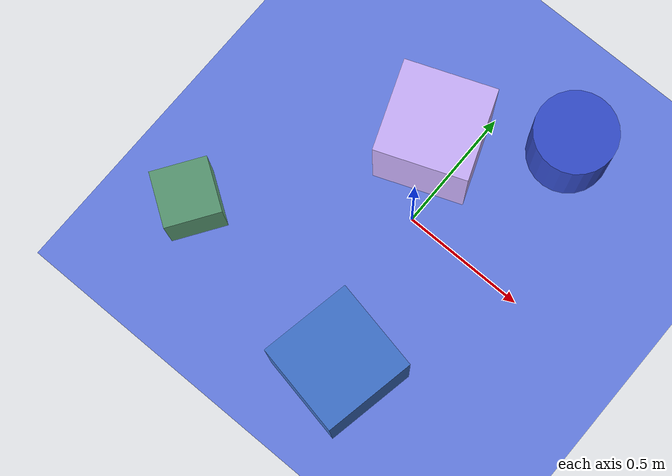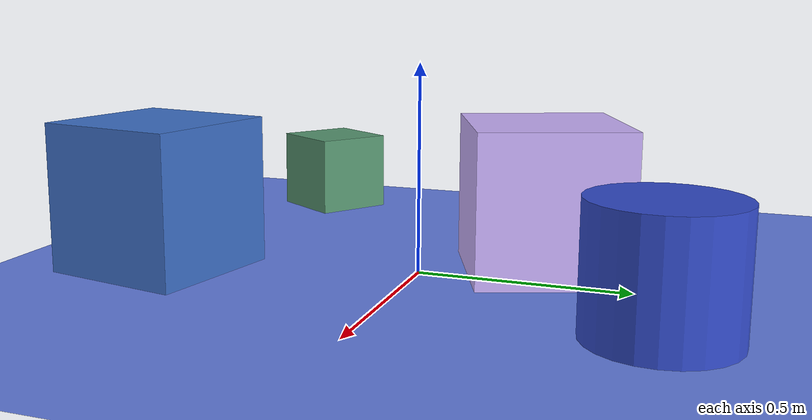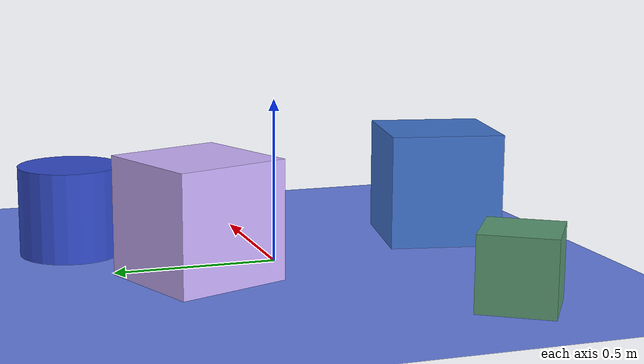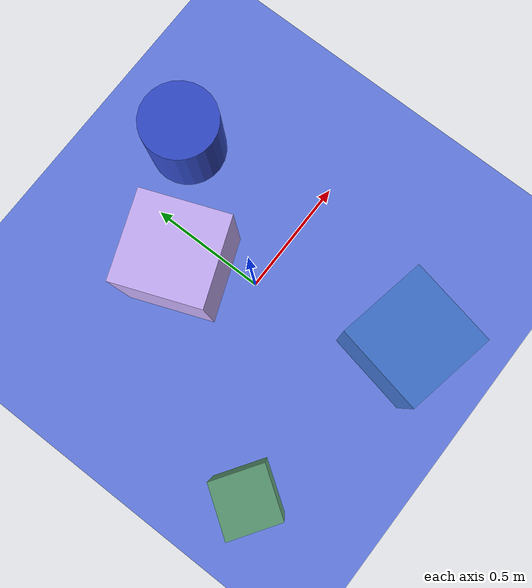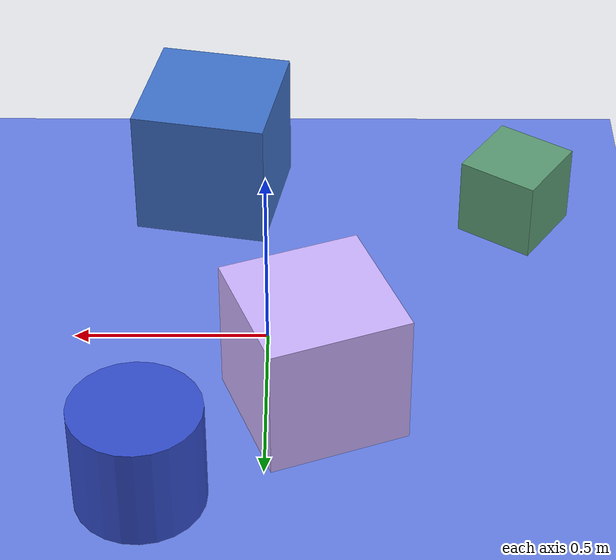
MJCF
<mujoco>
   <asset>
<texture type="skybox" builtin="gradient" rgb1="0.0 0.1 0.7" rgb2="0.7 0.1 0.6" width="256" height="256"/>
<texture name="gradient_0" builtin="gradient" rgb1="0.5 0.6 0.6" rgb2="0.0 0.3 1.0" width="200" height="200"/>
<texture name="checker_1" builtin="checker" rgb1="0.3 0.5 0.8" rgb2="0.1 0.1 0.8" width="200" height="200"/>
<texture name="flat_2" builtin="flat" rgb1="0.8 0.7 1.0" rgb2="0.8 0.7 1.0"  width="200" height="200"/>
<texture name="checker_3" builtin="checker" rgb1="0.2 0.8 0.5" rgb2="0.5 0.4 0.4" width="200" height="200"/><material name="gradient_0_mat" reflectance="0" texture="gradient_0" texuniform="true"/>
<material name="checker_1_mat" reflectance="0" texrepeat="7 7" texture="checker_1" texuniform="false" />
<material name="flat_2_mat" reflectance="0" texture="flat_2" texuniform="true"/>
<material name="checker_3_mat" reflectance="0" texrepeat="7 7" texture="checker_3" texuniform="false" />
   </asset>

   <worldbody>
      <light diffuse=".9 .9 .9" pos="0 0 3" dir="0 0 -1"/>
     <geom type="plane" size="1 1 0.1" rgba="0.4 0.5 0.9 1"/>
<geom type="box" pos="0.16 -0.61 0.18" size="0.18 0.18 0.18" material="gradient_0_mat" euler="0 0 79" />
<geom type="cylinder" pos="0.29 0.58 0.14" size="0.16 0.14 0.14" material="checker_1_mat" euler="0 0 33" />
<geom type="box" pos="-0.12 0.27 0.18" size="0.18 0.18 0.18" material="flat_2_mat" euler="0 0 21" />
<geom type="box" pos="-0.67 -0.49 0.11" size="0.11 0.11 0.11" material="checker_3_mat" euler="0 0 56" /><camera euler="60 0 180" fovy="60" name="camera1" pos="-0.2 -1.5 1"></camera>   </worldbody>
</mujoco>
